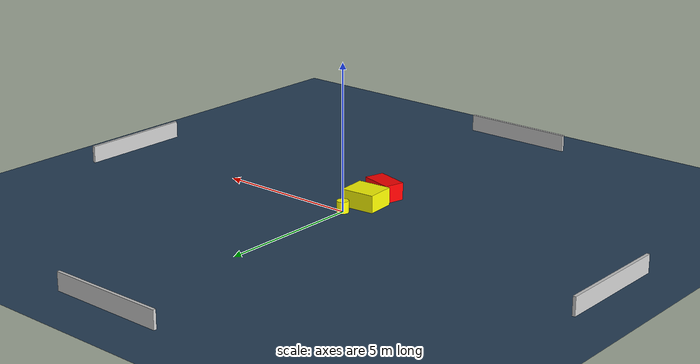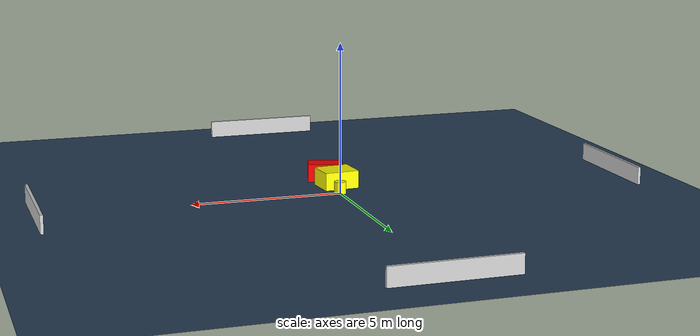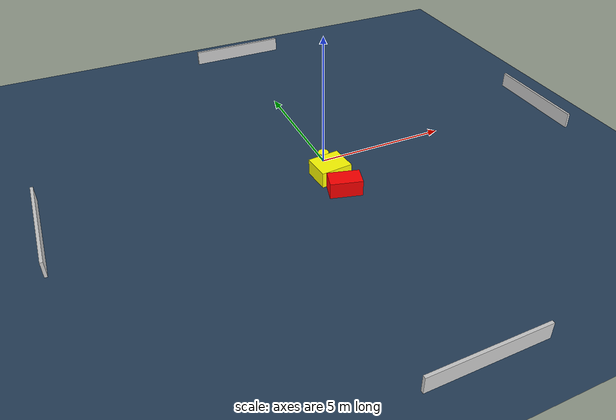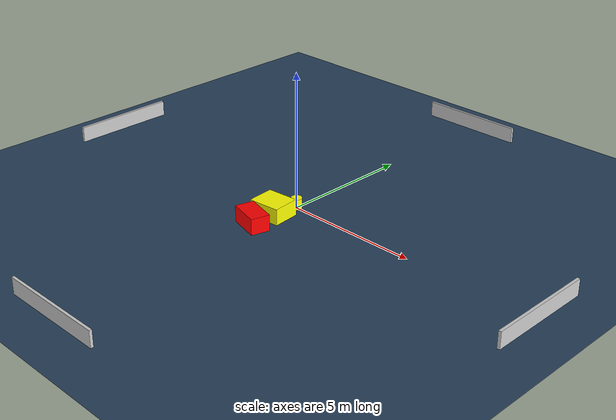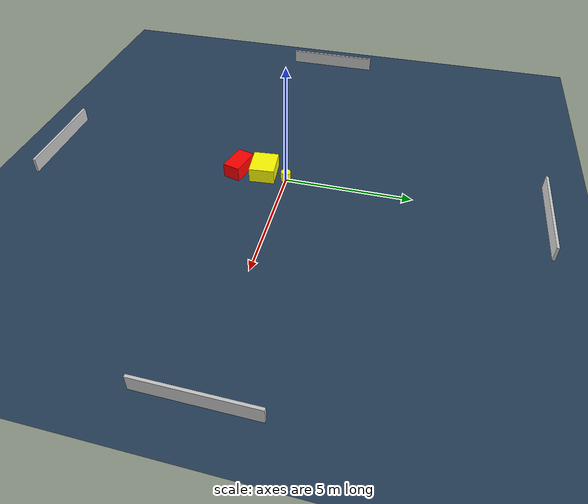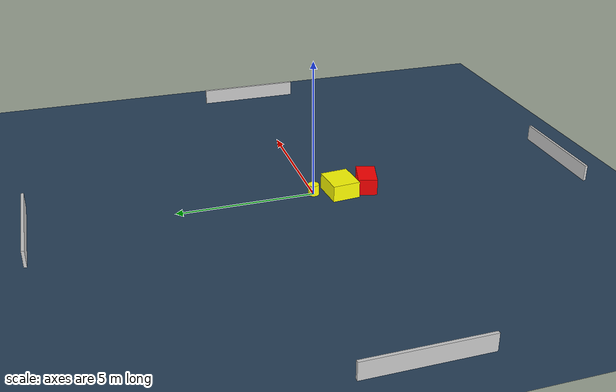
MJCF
<?xml version="1.0" ?>
<mujoco model="generated_environment">
  <option timestep="0.01" integrator="RK4" cone="elliptic"/>
  <default>
    <geom density="1"/>
  </default>
  <asset>
    <texture builtin="gradient" height="3072" name="skybox" rgb1="0.3 0.5 0.7" rgb2="0 0 0" type="skybox" width="512"/>
    <texture builtin="checker" height="300" name="groundplane" rgb1="0.2 0.3 0.4" rgb2="0.1 0.2 0.3" type="2d" width="300"/>
    <material name="groundplane" reflectance="0.2" texrepeat="5 5" texture="groundplane"/>
  </asset>
  <worldbody>
    <light dir="0 0 -1" directional="true" pos="0 0 1.5"/>
    <geom condim="3" friction="0.5 0.005 0.001" material="groundplane" name="floor" pos="0 0 0" size="0 0 0.05" type="plane"/>
    <body name="walls">
      <geom name="wall_1" condim="4" pos="-10.0 0.0 0.3" rgba="0.800000011920929 0.800000011920929 0.800000011920929 1.0" size="0.05 2.0 0.3" type="box"/>
      <geom name="wall_2" condim="4" pos="10.0 0.0 0.3" rgba="0.800000011920929 0.800000011920929 0.800000011920929 1.0" size="0.05 2.0 0.3" type="box"/>
      <geom name="wall_3" condim="4" pos="0.0 -10.0 0.3" rgba="0.800000011920929 0.800000011920929 0.800000011920929 1.0" size="2.0 0.05 0.3" type="box"/>
      <geom name="wall_4" condim="4" pos="0.0 10.0 0.3" rgba="0.800000011920929 0.800000011920929 0.800000011920929 1.0" size="2.0 0.05 0.3" type="box"/>
    </body>
    <body name="robot">
      <joint name="joint_x" type="slide" pos="0 0 0" axis="1 0 0"/>
      <joint name="joint_y" type="slide" pos="0 0 0" axis="0 1 0"/>
      <geom name="robot" type="cylinder" pos="0.0 0.0 0.2" size="0.2 0.2 0.0" mass="5.0" friction="1.0 0.005 0.0001" condim="4" rgba="1.0 1.0 0.0 1.0"/>
    </body>
    <body name="obstacle_1_movable">
      <geom name="obstacle_1_movable" condim="4" pos="-0.178380701296895 -0.953866850669809 0.3" euler="0 0 5.074109229717658" friction="0.0 0.005 0.001" rgba="1.0 1.0 0.0 1.0" size="0.5917337361282016 0.5060631440882182 0.3" type="box" mass="0.1"/>
      <joint type="free"/>
    </body>
    <body name="obstacle_2_static">
      <geom name="obstacle_2_static" condim="4" pos="-0.10343895244442235 -1.994321834020184 0.3" euler="0 0 164.82274059161395" friction="0.0 0.005 0.001" rgba="1.0 0.0 0.0 1.0" size="0.5829335691114088 0.3470201869548263 0.3" type="box"/>
    </body>
  </worldbody>
  <actuator>
    <motor name="actuator_x" joint="joint_x" gear="1" ctrlrange="-1 1"/>
    <motor name="actuator_y" joint="joint_y" gear="1" ctrlrange="-1 1"/>
  </actuator>
</mujoco>
